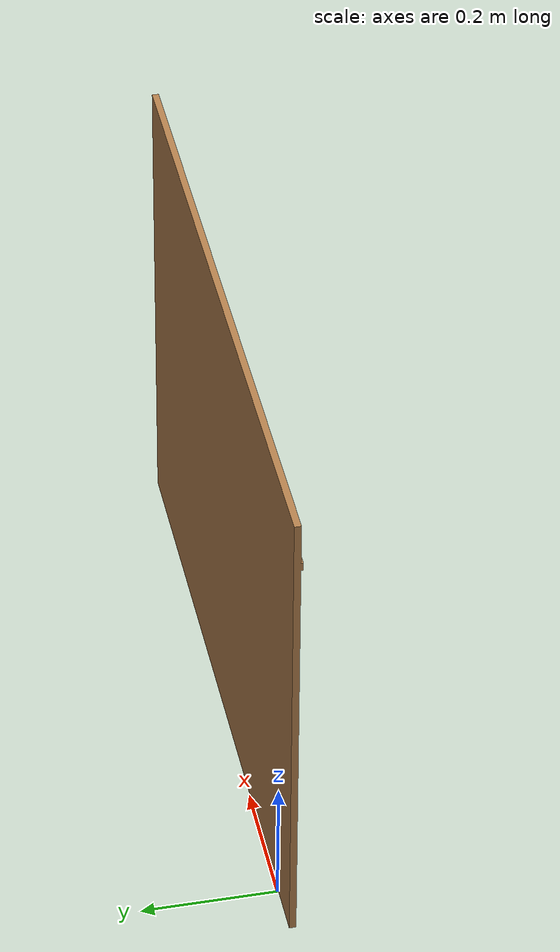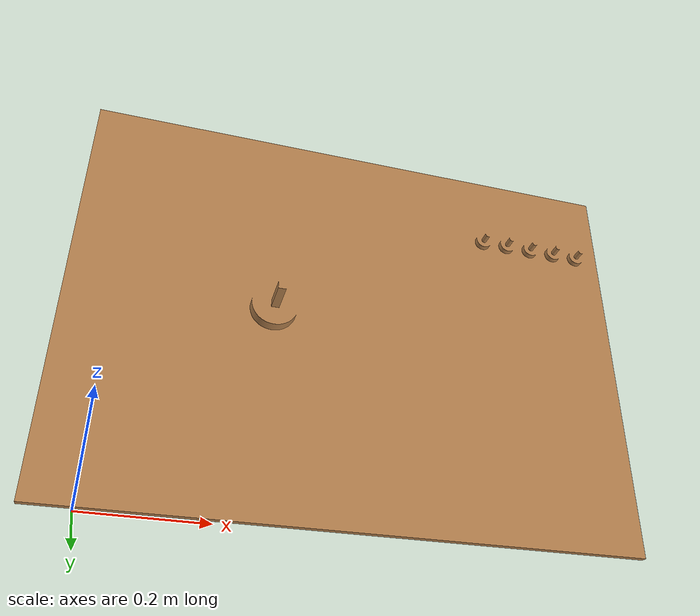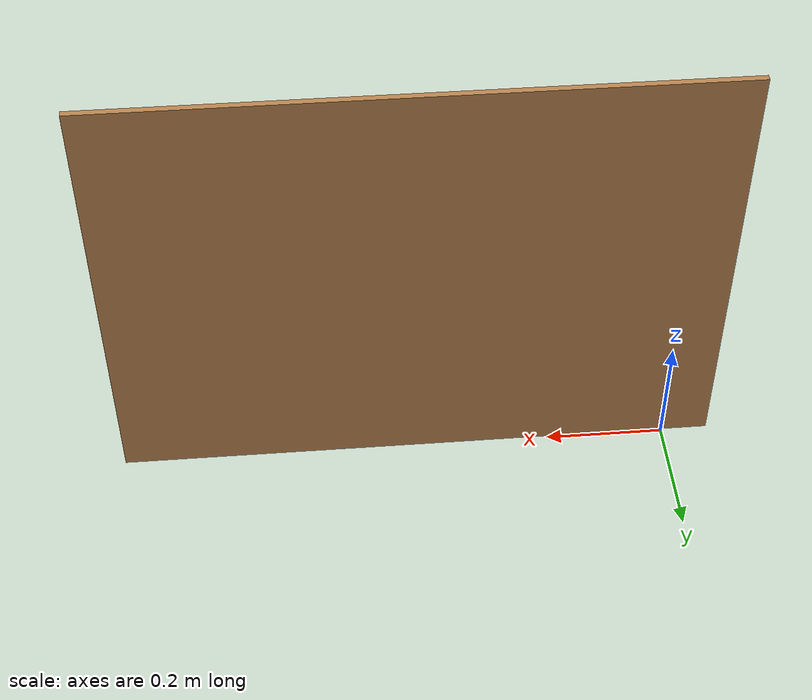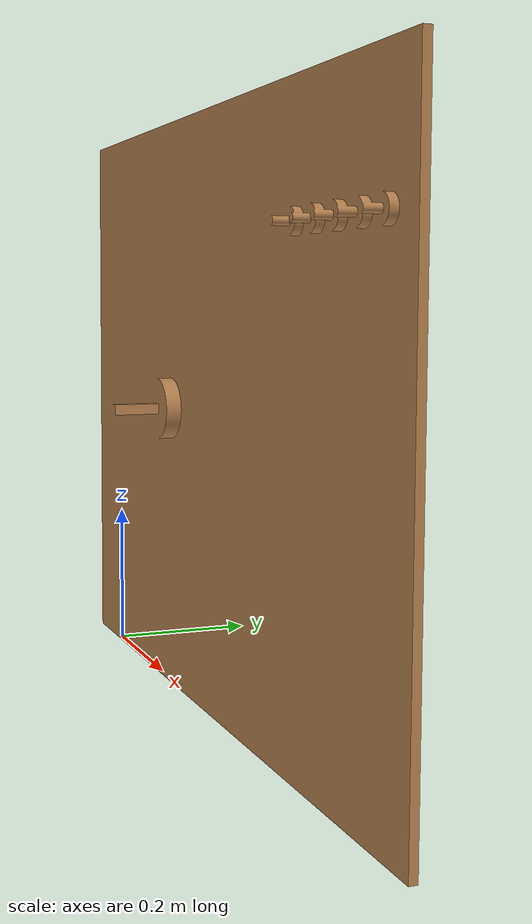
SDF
<?xml version="1.0" ?>
<sdf version="1.4">
  <model name="wrench_board">
    <static>false</static>
    <link name="link">
    	<!-- orient the model with 90 degree roll and on one end-->
		<pose>0 0 0.7 1.5708 0 0</pose>
		<inertial>
		    <mass>1.0762</mass>
	        <inertia>
	          <ixx>0.000708</ixx>
	          <ixy>-0.000007</ixy>
	          <ixz>0</ixz>
	          <iyy>0.001267</iyy>
	          <iyz>0</iyz>
	          <izz>0.001974</izz>
	        </inertia>
      	</inertial>
		<visual name="visual">
			<cast_shadows>false</cast_shadows>
			<geometry>
				<mesh>
					<!-- model in meters instead of mm-->
					<scale>0.001 0.001 0.001</scale>
					<uri>model://wrench_board/meshes/MBZIRC_WrenchBoard.dae</uri>
				</mesh>
			</geometry>
			  <material>
	          <script>
	            <uri>model://wrench_board/materials/scripts</uri>
	            <uri>model://wrench_board/materials/textures</uri>
	            <name>vrc/wood_board</name>
	          </script>
	        </material>
		</visual>
		<collision name="collision">
			<geometry>
				<mesh>
					<scale>0.001 0.001 0.001</scale>
					<uri>model://wrench_board/meshes/MBZIRC_WrenchBoard.dae</uri>
				</mesh>
			</geometry>
		</collision>
	</link>
	</model>
</sdf>
